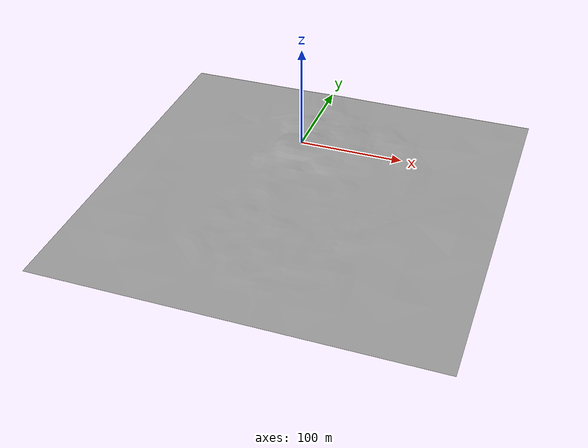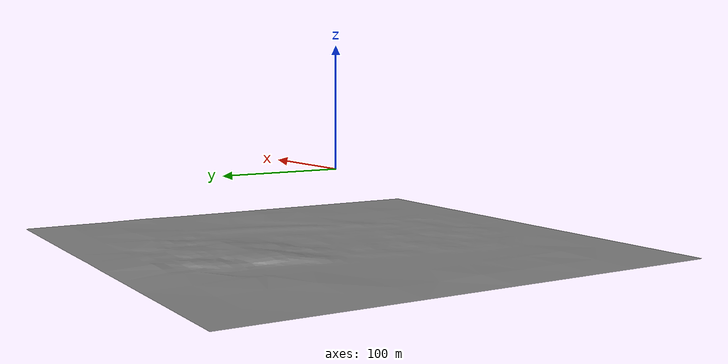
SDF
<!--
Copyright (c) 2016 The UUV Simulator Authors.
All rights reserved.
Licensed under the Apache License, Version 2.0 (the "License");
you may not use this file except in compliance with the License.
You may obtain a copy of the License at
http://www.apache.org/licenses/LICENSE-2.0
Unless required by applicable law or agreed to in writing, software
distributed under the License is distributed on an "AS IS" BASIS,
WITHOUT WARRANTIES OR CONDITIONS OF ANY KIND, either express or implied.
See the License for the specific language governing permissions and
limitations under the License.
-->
<?xml version="1.0" ?>
<sdf version="1.5">
  <model name="herkules_seabed">
    <static>true</static>
    <link name="seabed">
      <collision name="seabed">
        <pose>0 0 -60 0 0 0</pose>
        <geometry>
          <mesh>
            <uri>model://herkules_seabed/meshes/herkules_seabed.dae</uri>
            <scale>4.0 4.0 1.0</scale>
          </mesh>
        </geometry>
      </collision>

      <visual name="seabed">
        <cast_shadows>true</cast_shadows>
        <pose>0 0 -60 0 0 0</pose>
        <geometry>
          <mesh>
            <uri>model://herkules_seabed/meshes/herkules_seabed.dae</uri>
            <scale>4.0 4.0 1.0</scale>
          </mesh>
        </geometry>
        <material>
          <script>
            <uri>model://sand_heightmap/scripts</uri>
            <name>UUVSimulator/SandAndStones</name>
          </script>
        </material>
      </visual>
    </link>

  </model>
</sdf>
